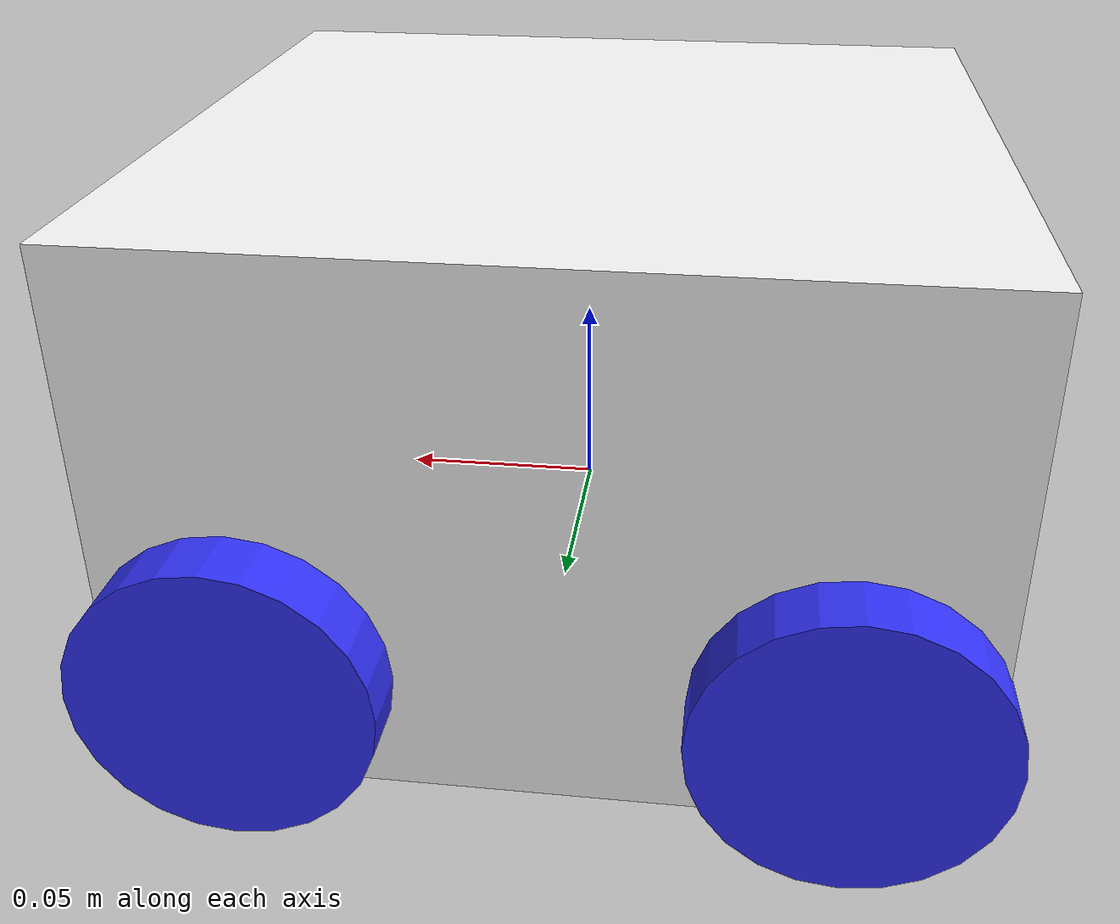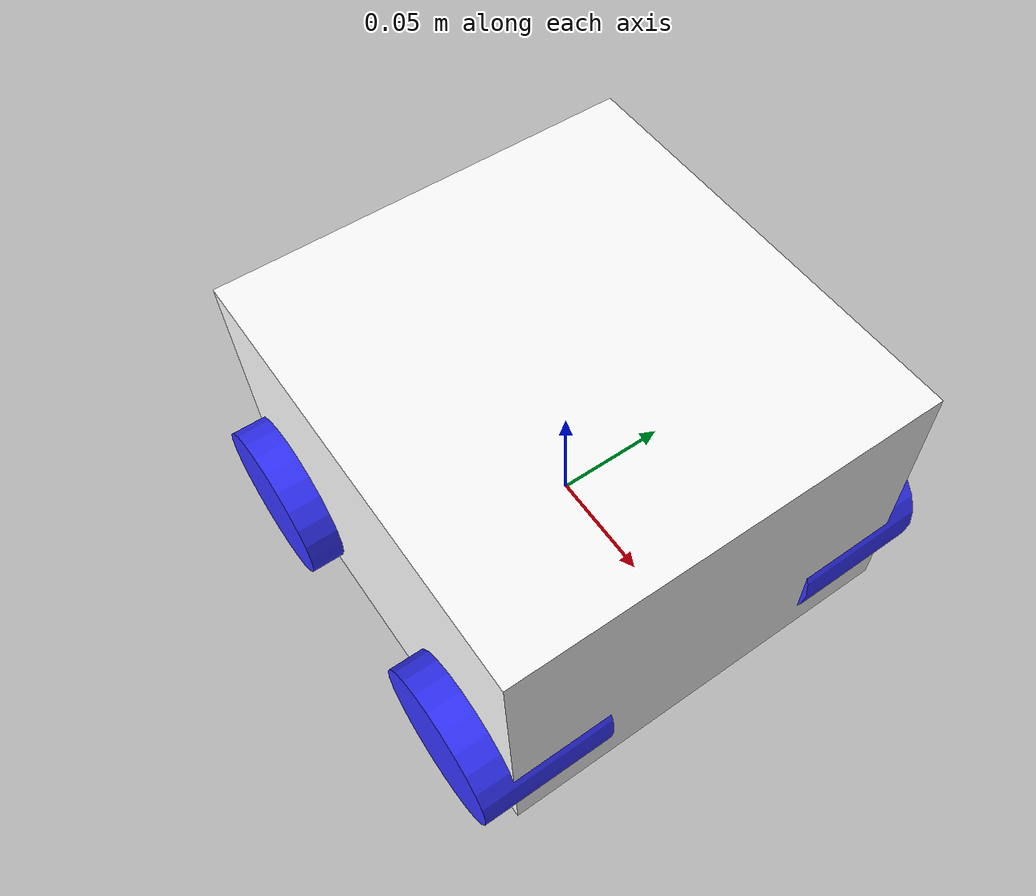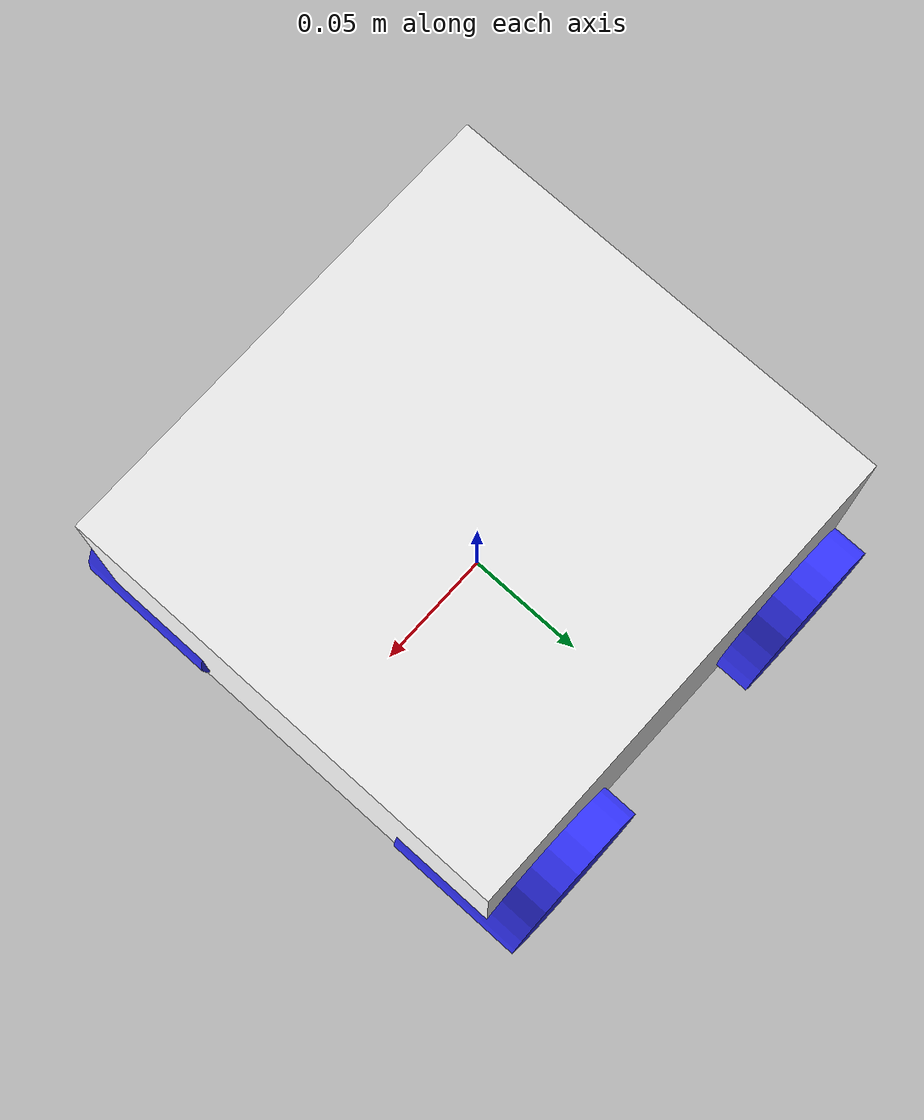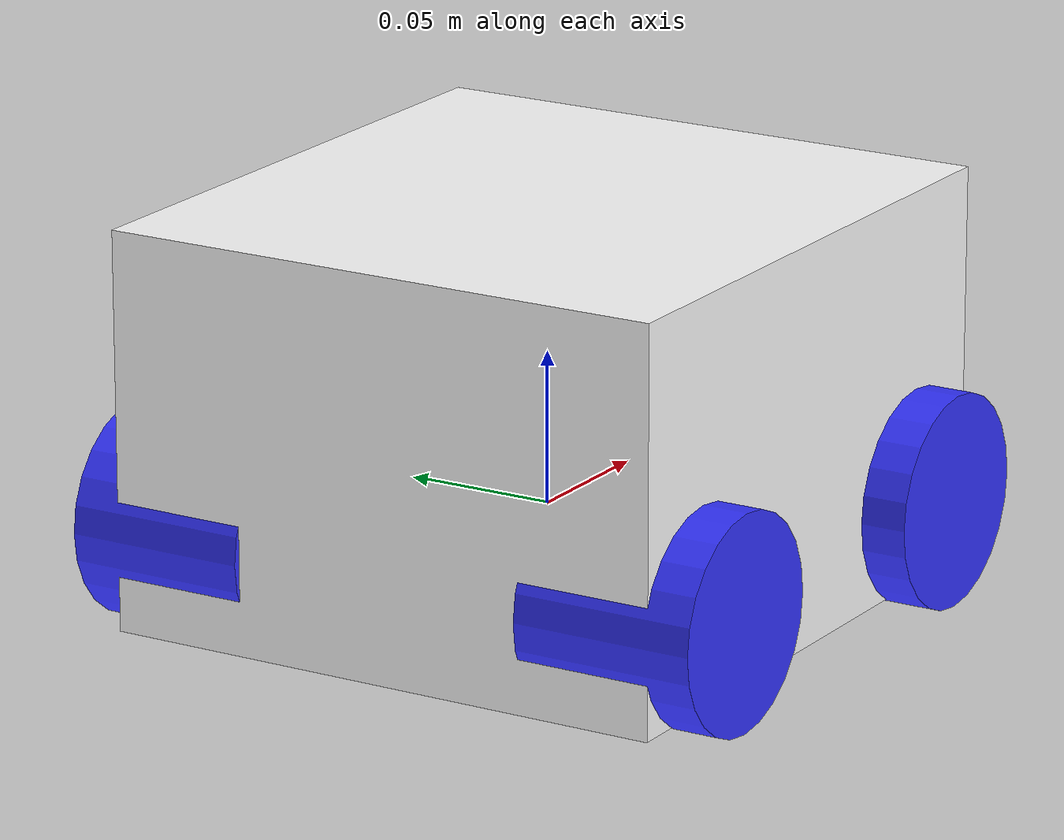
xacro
<?xml version="1.0"?>
<robot xmlns:xacro="http://www.ros.org/wiki/xacro">

    <material name="white">
        <color rgba="1 1 1 1"/>
    </material>

    <material name="orange">
        <color rgba="1 0.3 0.1 1"/>
    </material>

    <material name="blue">
        <color rgba="0.2 0.2 1 1"/>
    </material>

    <material name="black">
        <color rgba="0 0 0 1"/>
    </material>

	<material name="red">
		<color rgba="1 0 0 1"/>
	</material>

    <link name="base_link">
    </link>

    <joint name="chassis_joint" type="fixed">
        <parent link="base_link"/>
        <child link="chassis"/>
        <origin xyz="-0.1 0 0"/>
    </joint>

    <!-- CHASSIS -->
    <link name="chassis">
        <visual>
            <origin xyz="0.10 0 0.035" rpy="0 0 0"/>
            <geometry>
                <box size="0.20 0.19 0.13"/>
            </geometry>
            <material name="white"/>
        </visual>
        <collision>
            <origin xyz="0.10 0 0.035" rpy="0 0 0"/>
            <geometry>
                <box size="0.20 0.19 0.13"/>
            </geometry>
        </collision>
        <!-- ... intertia ... -->
        <xacro:inertial_box mass="0.5" x="0.20" y="0.19" z="0.13">
            <origin xyz="0.15 0 0.075" rpy="0 0 0"/>
        </xacro:inertial_box>
    </link>
	<gazebo reference="chassis">
		<material>Gazebo/White</material>
	</gazebo>

	<!-- LEFT BACK WHEEL -->
    <joint name="left_back_wheel_joint" type="continuous">
        <parent link="base_link"/>
        <child link="left_back_wheel"/>
        <origin xyz="-0.0675 0.08 0" rpy="-${pi/2} 0 0" />
        <axis xyz="0 0 1"/>
    </joint>

    <link name="left_back_wheel">
        <visual>
            <geometry>
                <cylinder radius="0.035" length="0.06"/>
            </geometry>
            <material name="blue"/>
        </visual>
        <collision>
            <geometry>
                <sphere  radius="0.035"/>
            </geometry>
        </collision>
        <!-- ... intertia ... -->
        <xacro:inertial_cylinder mass="0.1" length="0.035" radius="0.06">
            <origin xyz="0 0 0" rpy="0 0 0"/>
        </xacro:inertial_cylinder>
    </link>

	<gazebo reference="left_back_wheel">
		<material>Gazebo/Blue</material>
	</gazebo>

    <!-- LEFT FRONT WHEEL -->
    <joint name="left_front_wheel_joint" type="continuous"> <!--   continuous -->
        <parent link="base_link"/> <!--   base_link -->
        <child link="left_front_wheel"/>
        <origin xyz="0.0675 0.08 0" rpy="-${pi/2} 0 0"/>
        <axis xyz="0 0 1"/>
    </joint>

    <link name="left_front_wheel">
        <visual>
            <geometry>
                <cylinder radius="0.035" length="0.06" />
            </geometry>
            <material name="blue"/>
        </visual>
        <collision>
            <geometry>
                <cylinder radius="0.035" length="0.06"/>
            </geometry>
        </collision>
		<!-- ... intertia ... -->
        <xacro:inertial_cylinder mass="0.1" length="0.035" radius="0.06">
            <origin xyz="0 0 0" rpy="0 0 0"/>
        </xacro:inertial_cylinder>
    </link>

	<gazebo reference="left_front_wheel">
		<material>Gazebo/Blue</material>
		<mu1 value="0.1"/>
		<mu2 value="0.1"/>
	</gazebo>

    <!-- RIGHT BACK WHEEL -->
    <joint name="right_back_wheel_joint" type="continuous">
        <parent link="base_link"/>
        <child link="right_back_wheel"/>
        <origin xyz="-0.0675 -0.08 0" rpy="${pi/2} 0 0"/>
        <axis xyz="0 0 -1"/>
    </joint>

    <link name="right_back_wheel">
        <visual>
            <geometry>
                <cylinder radius="0.035" length="0.06" />
            </geometry>
            <material name="blue"/>
        </visual>
        <collision>
            <geometry>
                <sphere  radius="0.035"/>
			</geometry>
        </collision>
        <!-- ... intertia ... -->
        <xacro:inertial_cylinder mass="0.1" length="0.035" radius="0.06">
            <origin xyz="0 0 0" rpy="0 0 0"/>
        </xacro:inertial_cylinder>
    </link>

	<gazebo reference="right_back_wheel">
		<material>Gazebo/Blue</material>
	</gazebo>

    <!-- RIGHT FRONT WHEEL -->
    <joint name="right_front_wheel_joint" type="continuous">  <!--   continuous -->
        <parent link="base_link"/>  <!--   base_link -->
        <child link="right_front_wheel"/>
        <origin xyz="0.0675 -0.08 0" rpy="${pi/2} 0 0"/>
        <axis xyz="0 0 -1"/>
    </joint>

    <link name="right_front_wheel">
        <visual>
            <geometry>
                <cylinder radius="0.035" length="0.06" />
            </geometry>
            <material name="blue"/>
        </visual>
        <collision>
            <geometry>
                <cylinder radius="0.035" length="0.06"/>
            </geometry>
        </collision>
        <!-- ... intertia ... -->
        <xacro:inertial_cylinder mass="0.1" length="0.035" radius="0.06">
            <origin xyz="0 0 0" rpy="0 0 0"/>
        </xacro:inertial_cylinder>
    </link>

	<gazebo reference="right_front_wheel">
		<material>Gazebo/Blue</material>
		<mu1 value="0.1"/>
		<mu2 value="0.1"/>
	</gazebo>

</robot>
